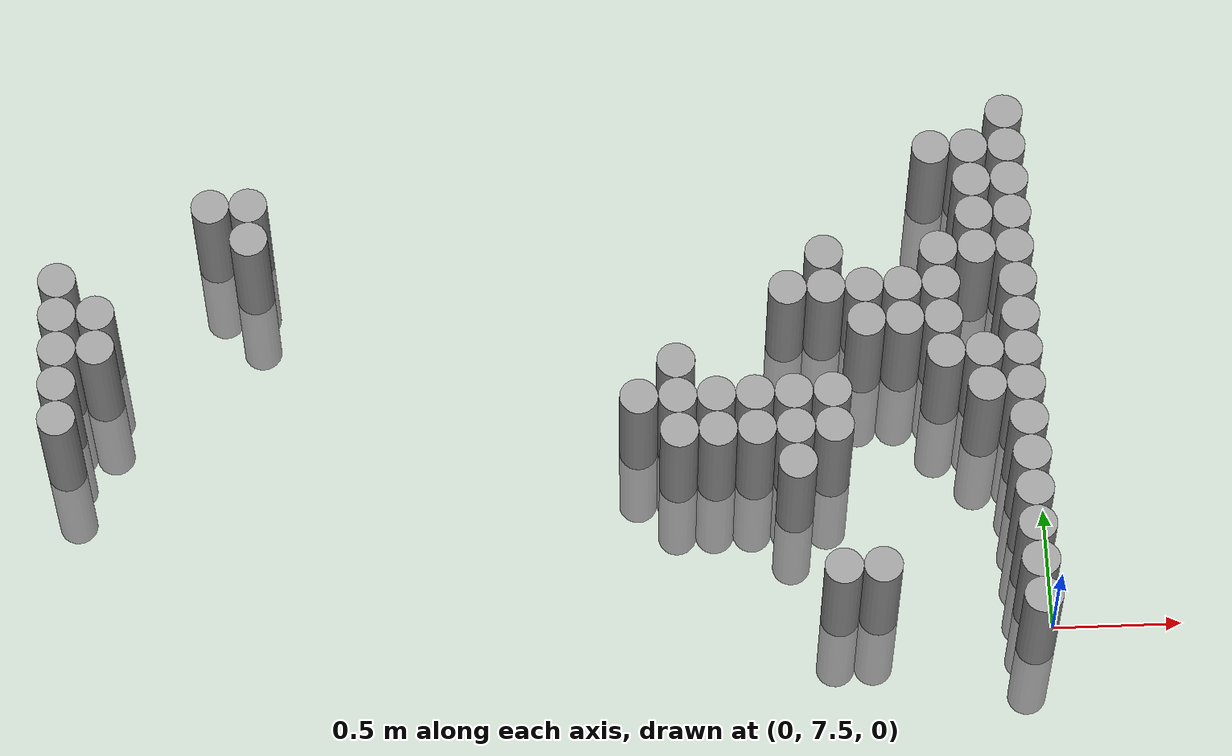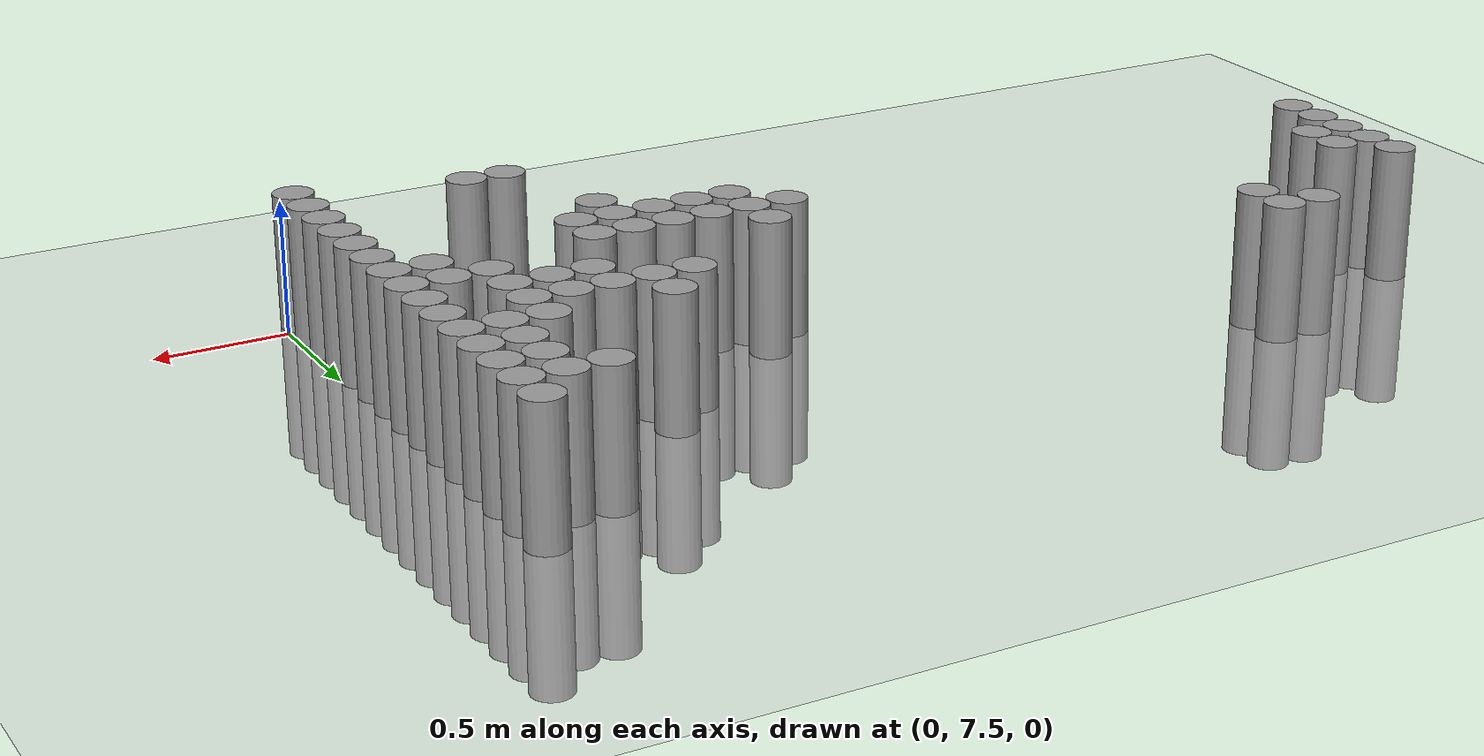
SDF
<sdf version="1.6">
 <world name="default">
  <model name="ground_plane">
   <static>1</static>
   <static>1</static>
   <link name="link">
    <collision name="collision">
     <geometry><plane><normal>0 0 1</normal><size>100 100</size></plane></geometry>
     <surface><friction><ode><mu>100</mu><mu2>50</mu2></ode></friction></surface>
    </collision>
    <visual name="visual">
     <cast_shadows>0</cast_shadows>
     <geometry><plane><normal>0 0 1</normal><size>100 100</size></plane></geometry>
     <material>
      <script><uri>file://media/materials/scripts/gazebo.material</uri><name>Gazebo/Grey</name></script>
     </material>
    </visual>
   </link>
  </model>
  <model name="unit_cylinder_165">
   <static>1</static>
   <pose>-3.825000 8.325000 0.000000 0.000000 0.000000 0.000000</pose>
   <link name="link">
    <inertial>
     <mass>1</mass>
     <inertia><ixx>0.145833</ixx><ixy>0</ixy><ixz>0</ixz><iyy>0.145833</iyy><iyz>0</iyz><izz>0.125</izz></inertia>
    </inertial>
    <collision name="collision">
     <geometry><cylinder><radius>0.075000</radius><length>1</length></cylinder></geometry>
    </collision>
    <visual name="visual">
     <geometry><cylinder><radius>0.075000</radius><length>1</length></cylinder></geometry>
     <material>
      <script><name>Gazebo/Grey</name><uri>file://media/materials/scripts/gazebo.material</uri></script>
     </material>
    </visual>
   </link>
  </model>
  <model name="unit_cylinder_166">
   <static>1</static>
   <pose>-3.825000 8.475000 0.000000 0.000000 0.000000 0.000000</pose>
   <link name="link">
    <inertial>
     <mass>1</mass>
     <inertia><ixx>0.145833</ixx><ixy>0</ixy><ixz>0</ixz><iyy>0.145833</iyy><iyz>0</iyz><izz>0.125</izz></inertia>
    </inertial>
    <collision name="collision">
     <geometry><cylinder><radius>0.075000</radius><length>1</length></cylinder></geometry>
    </collision>
    <visual name="visual">
     <geometry><cylinder><radius>0.075000</radius><length>1</length></cylinder></geometry>
     <material>
      <script><name>Gazebo/Grey</name><uri>file://media/materials/scripts/gazebo.material</uri></script>
     </material>
    </visual>
   </link>
  </model>
  <model name="unit_cylinder_167">
   <static>1</static>
   <pose>-3.825000 8.625000 0.000000 0.000000 0.000000 0.000000</pose>
   <link name="link">
    <inertial>
     <mass>1</mass>
     <inertia><ixx>0.145833</ixx><ixy>0</ixy><ixz>0</ixz><iyy>0.145833</iyy><iyz>0</iyz><izz>0.125</izz></inertia>
    </inertial>
    <collision name="collision">
     <geometry><cylinder><radius>0.075000</radius><length>1</length></cylinder></geometry>
    </collision>
    <visual name="visual">
     <geometry><cylinder><radius>0.075000</radius><length>1</length></cylinder></geometry>
     <material>
      <script><name>Gazebo/Grey</name><uri>file://media/materials/scripts/gazebo.material</uri></script>
     </material>
    </visual>
   </link>
  </model>
  <model name="unit_cylinder_168">
   <static>1</static>
   <pose>-3.825000 8.775000 0.000000 0.000000 0.000000 0.000000</pose>
   <link name="link">
    <inertial>
     <mass>1</mass>
     <inertia><ixx>0.145833</ixx><ixy>0</ixy><ixz>0</ixz><iyy>0.145833</iyy><iyz>0</iyz><izz>0.125</izz></inertia>
    </inertial>
    <collision name="collision">
     <geometry><cylinder><radius>0.075000</radius><length>1</length></cylinder></geometry>
    </collision>
    <visual name="visual">
     <geometry><cylinder><radius>0.075000</radius><length>1</length></cylinder></geometry>
     <material>
      <script><name>Gazebo/Grey</name><uri>file://media/materials/scripts/gazebo.material</uri></script>
     </material>
    </visual>
   </link>
  </model>
  <model name="unit_cylinder_169">
   <static>1</static>
   <pose>-3.825000 8.925000 0.000000 0.000000 0.000000 0.000000</pose>
   <link name="link">
    <inertial>
     <mass>1</mass>
     <inertia><ixx>0.145833</ixx><ixy>0</ixy><ixz>0</ixz><iyy>0.145833</iyy><iyz>0</iyz><izz>0.125</izz></inertia>
    </inertial>
    <collision name="collision">
     <geometry><cylinder><radius>0.075000</radius><length>1</length></cylinder></geometry>
    </collision>
    <visual name="visual">
     <geometry><cylinder><radius>0.075000</radius><length>1</length></cylinder></geometry>
     <material>
      <script><name>Gazebo/Grey</name><uri>file://media/materials/scripts/gazebo.material</uri></script>
     </material>
    </visual>
   </link>
  </model>
  <model name="unit_cylinder_174">
   <static>1</static>
   <pose>-3.675000 8.625000 0.000000 0.000000 0.000000 0.000000</pose>
   <link name="link">
    <inertial>
     <mass>1</mass>
     <inertia><ixx>0.145833</ixx><ixy>0</ixy><ixz>0</ixz><iyy>0.145833</iyy><iyz>0</iyz><izz>0.125</izz></inertia>
    </inertial>
    <collision name="collision">
     <geometry><cylinder><radius>0.075000</radius><length>1</length></cylinder></geometry>
    </collision>
    <visual name="visual">
     <geometry><cylinder><radius>0.075000</radius><length>1</length></cylinder></geometry>
     <material>
      <script><name>Gazebo/Grey</name><uri>file://media/materials/scripts/gazebo.material</uri></script>
     </material>
    </visual>
   </link>
  </model>
  <model name="unit_cylinder_175">
   <static>1</static>
   <pose>-3.675000 8.775000 0.000000 0.000000 0.000000 0.000000</pose>
   <link name="link">
    <inertial>
     <mass>1</mass>
     <inertia><ixx>0.145833</ixx><ixy>0</ixy><ixz>0</ixz><iyy>0.145833</iyy><iyz>0</iyz><izz>0.125</izz></inertia>
    </inertial>
    <collision name="collision">
     <geometry><cylinder><radius>0.075000</radius><length>1</length></cylinder></geometry>
    </collision>
    <visual name="visual">
     <geometry><cylinder><radius>0.075000</radius><length>1</length></cylinder></geometry>
     <material>
      <script><name>Gazebo/Grey</name><uri>file://media/materials/scripts/gazebo.material</uri></script>
     </material>
    </visual>
   </link>
  </model>
  <model name="unit_cylinder_183">
   <static>1</static>
   <pose>-3.225000 9.225000 0.000000 0.000000 0.000000 0.000000</pose>
   <link name="link">
    <inertial>
     <mass>1</mass>
     <inertia><ixx>0.145833</ixx><ixy>0</ixy><ixz>0</ixz><iyy>0.145833</iyy><iyz>0</iyz><izz>0.125</izz></inertia>
    </inertial>
    <collision name="collision">
     <geometry><cylinder><radius>0.075000</radius><length>1</length></cylinder></geometry>
    </collision>
    <visual name="visual">
     <geometry><cylinder><radius>0.075000</radius><length>1</length></cylinder></geometry>
     <material>
      <script><name>Gazebo/Grey</name><uri>file://media/materials/scripts/gazebo.material</uri></script>
     </material>
    </visual>
   </link>
  </model>
  <model name="unit_cylinder_186">
   <static>1</static>
   <pose>-3.075000 9.075000 0.000000 0.000000 0.000000 0.000000</pose>
   <link name="link">
    <inertial>
     <mass>1</mass>
     <inertia><ixx>0.145833</ixx><ixy>0</ixy><ixz>0</ixz><iyy>0.145833</iyy><iyz>0</iyz><izz>0.125</izz></inertia>
    </inertial>
    <collision name="collision">
     <geometry><cylinder><radius>0.075000</radius><length>1</length></cylinder></geometry>
    </collision>
    <visual name="visual">
     <geometry><cylinder><radius>0.075000</radius><length>1</length></cylinder></geometry>
     <material>
      <script><name>Gazebo/Grey</name><uri>file://media/materials/scripts/gazebo.material</uri></script>
     </material>
    </visual>
   </link>
  </model>
  <model name="unit_cylinder_187">
   <static>1</static>
   <pose>-3.075000 9.225000 0.000000 0.000000 0.000000 0.000000</pose>
   <link name="link">
    <inertial>
     <mass>1</mass>
     <inertia><ixx>0.145833</ixx><ixy>0</ixy><ixz>0</ixz><iyy>0.145833</iyy><iyz>0</iyz><izz>0.125</izz></inertia>
    </inertial>
    <collision name="collision">
     <geometry><cylinder><radius>0.075000</radius><length>1</length></cylinder></geometry>
    </collision>
    <visual name="visual">
     <geometry><cylinder><radius>0.075000</radius><length>1</length></cylinder></geometry>
     <material>
      <script><name>Gazebo/Grey</name><uri>file://media/materials/scripts/gazebo.material</uri></script>
     </material>
    </visual>
   </link>
  </model>
  <model name="unit_cylinder_196">
   <static>1</static>
   <pose>-1.575000 8.325000 0.000000 0.000000 0.000000 0.000000</pose>
   <link name="link">
    <inertial>
     <mass>1</mass>
     <inertia><ixx>0.145833</ixx><ixy>0</ixy><ixz>0</ixz><iyy>0.145833</iyy><iyz>0</iyz><izz>0.125</izz></inertia>
    </inertial>
    <collision name="collision">
     <geometry><cylinder><radius>0.075000</radius><length>1</length></cylinder></geometry>
    </collision>
    <visual name="visual">
     <geometry><cylinder><radius>0.075000</radius><length>1</length></cylinder></geometry>
     <material>
      <script><name>Gazebo/Grey</name><uri>file://media/materials/scripts/gazebo.material</uri></script>
     </material>
    </visual>
   </link>
  </model>
  <model name="unit_cylinder_203">
   <static>1</static>
   <pose>-1.425000 8.175000 0.000000 0.000000 0.000000 0.000000</pose>
   <link name="link">
    <inertial>
     <mass>1</mass>
     <inertia><ixx>0.145833</ixx><ixy>0</ixy><ixz>0</ixz><iyy>0.145833</iyy><iyz>0</iyz><izz>0.125</izz></inertia>
    </inertial>
    <collision name="collision">
     <geometry><cylinder><radius>0.075000</radius><length>1</length></cylinder></geometry>
    </collision>
    <visual name="visual">
     <geometry><cylinder><radius>0.075000</radius><length>1</length></cylinder></geometry>
     <material>
      <script><name>Gazebo/Grey</name><uri>file://media/materials/scripts/gazebo.material</uri></script>
     </material>
    </visual>
   </link>
  </model>
  <model name="unit_cylinder_204">
   <static>1</static>
   <pose>-1.425000 8.325000 0.000000 0.000000 0.000000 0.000000</pose>
   <link name="link">
    <inertial>
     <mass>1</mass>
     <inertia><ixx>0.145833</ixx><ixy>0</ixy><ixz>0</ixz><iyy>0.145833</iyy><iyz>0</iyz><izz>0.125</izz></inertia>
    </inertial>
    <collision name="collision">
     <geometry><cylinder><radius>0.075000</radius><length>1</length></cylinder></geometry>
    </collision>
    <visual name="visual">
     <geometry><cylinder><radius>0.075000</radius><length>1</length></cylinder></geometry>
     <material>
      <script><name>Gazebo/Grey</name><uri>file://media/materials/scripts/gazebo.material</uri></script>
     </material>
    </visual>
   </link>
  </model>
  <model name="unit_cylinder_205">
   <static>1</static>
   <pose>-1.425000 8.475000 0.000000 0.000000 0.000000 0.000000</pose>
   <link name="link">
    <inertial>
     <mass>1</mass>
     <inertia><ixx>0.145833</ixx><ixy>0</ixy><ixz>0</ixz><iyy>0.145833</iyy><iyz>0</iyz><izz>0.125</izz></inertia>
    </inertial>
    <collision name="collision">
     <geometry><cylinder><radius>0.075000</radius><length>1</length></cylinder></geometry>
    </collision>
    <visual name="visual">
     <geometry><cylinder><radius>0.075000</radius><length>1</length></cylinder></geometry>
     <material>
      <script><name>Gazebo/Grey</name><uri>file://media/materials/scripts/gazebo.material</uri></script>
     </material>
    </visual>
   </link>
  </model>
  <model name="unit_cylinder_211">
   <static>1</static>
   <pose>-1.275000 8.175000 0.000000 0.000000 0.000000 0.000000</pose>
   <link name="link">
    <inertial>
     <mass>1</mass>
     <inertia><ixx>0.145833</ixx><ixy>0</ixy><ixz>0</ixz><iyy>0.145833</iyy><iyz>0</iyz><izz>0.125</izz></inertia>
    </inertial>
    <collision name="collision">
     <geometry><cylinder><radius>0.075000</radius><length>1</length></cylinder></geometry>
    </collision>
    <visual name="visual">
     <geometry><cylinder><radius>0.075000</radius><length>1</length></cylinder></geometry>
     <material>
      <script><name>Gazebo/Grey</name><uri>file://media/materials/scripts/gazebo.material</uri></script>
     </material>
    </visual>
   </link>
  </model>
  <model name="unit_cylinder_212">
   <static>1</static>
   <pose>-1.275000 8.325000 0.000000 0.000000 0.000000 0.000000</pose>
   <link name="link">
    <inertial>
     <mass>1</mass>
     <inertia><ixx>0.145833</ixx><ixy>0</ixy><ixz>0</ixz><iyy>0.145833</iyy><iyz>0</iyz><izz>0.125</izz></inertia>
    </inertial>
    <collision name="collision">
     <geometry><cylinder><radius>0.075000</radius><length>1</length></cylinder></geometry>
    </collision>
    <visual name="visual">
     <geometry><cylinder><radius>0.075000</radius><length>1</length></cylinder></geometry>
     <material>
      <script><name>Gazebo/Grey</name><uri>file://media/materials/scripts/gazebo.material</uri></script>
     </material>
    </visual>
   </link>
  </model>
  <model name="unit_cylinder_214">
   <static>1</static>
   <pose>-1.125000 8.175000 0.000000 0.000000 0.000000 0.000000</pose>
   <link name="link">
    <inertial>
     <mass>1</mass>
     <inertia><ixx>0.145833</ixx><ixy>0</ixy><ixz>0</ixz><iyy>0.145833</iyy><iyz>0</iyz><izz>0.125</izz></inertia>
    </inertial>
    <collision name="collision">
     <geometry><cylinder><radius>0.075000</radius><length>1</length></cylinder></geometry>
    </collision>
    <visual name="visual">
     <geometry><cylinder><radius>0.075000</radius><length>1</length></cylinder></geometry>
     <material>
      <script><name>Gazebo/Grey</name><uri>file://media/materials/scripts/gazebo.material</uri></script>
     </material>
    </visual>
   </link>
  </model>
  <model name="unit_cylinder_215">
   <static>1</static>
   <pose>-1.125000 8.325000 0.000000 0.000000 0.000000 0.000000</pose>
   <link name="link">
    <inertial>
     <mass>1</mass>
     <inertia><ixx>0.145833</ixx><ixy>0</ixy><ixz>0</ixz><iyy>0.145833</iyy><iyz>0</iyz><izz>0.125</izz></inertia>
    </inertial>
    <collision name="collision">
     <geometry><cylinder><radius>0.075000</radius><length>1</length></cylinder></geometry>
    </collision>
    <visual name="visual">
     <geometry><cylinder><radius>0.075000</radius><length>1</length></cylinder></geometry>
     <material>
      <script><name>Gazebo/Grey</name><uri>file://media/materials/scripts/gazebo.material</uri></script>
     </material>
    </visual>
   </link>
  </model>
  <model name="unit_cylinder_217">
   <static>1</static>
   <pose>-0.975000 8.025000 0.000000 0.000000 0.000000 0.000000</pose>
   <link name="link">
    <inertial>
     <mass>1</mass>
     <inertia><ixx>0.145833</ixx><ixy>0</ixy><ixz>0</ixz><iyy>0.145833</iyy><iyz>0</iyz><izz>0.125</izz></inertia>
    </inertial>
    <collision name="collision">
     <geometry><cylinder><radius>0.075000</radius><length>1</length></cylinder></geometry>
    </collision>
    <visual name="visual">
     <geometry><cylinder><radius>0.075000</radius><length>1</length></cylinder></geometry>
     <material>
      <script><name>Gazebo/Grey</name><uri>file://media/materials/scripts/gazebo.material</uri></script>
     </material>
    </visual>
   </link>
  </model>
  <model name="unit_cylinder_218">
   <static>1</static>
   <pose>-0.975000 8.175000 0.000000 0.000000 0.000000 0.000000</pose>
   <link name="link">
    <inertial>
     <mass>1</mass>
     <inertia><ixx>0.145833</ixx><ixy>0</ixy><ixz>0</ixz><iyy>0.145833</iyy><iyz>0</iyz><izz>0.125</izz></inertia>
    </inertial>
    <collision name="collision">
     <geometry><cylinder><radius>0.075000</radius><length>1</length></cylinder></geometry>
    </collision>
    <visual name="visual">
     <geometry><cylinder><radius>0.075000</radius><length>1</length></cylinder></geometry>
     <material>
      <script><name>Gazebo/Grey</name><uri>file://media/materials/scripts/gazebo.material</uri></script>
     </material>
    </visual>
   </link>
  </model>
  <model name="unit_cylinder_219">
   <static>1</static>
   <pose>-0.975000 8.325000 0.000000 0.000000 0.000000 0.000000</pose>
   <link name="link">
    <inertial>
     <mass>1</mass>
     <inertia><ixx>0.145833</ixx><ixy>0</ixy><ixz>0</ixz><iyy>0.145833</iyy><iyz>0</iyz><izz>0.125</izz></inertia>
    </inertial>
    <collision name="collision">
     <geometry><cylinder><radius>0.075000</radius><length>1</length></cylinder></geometry>
    </collision>
    <visual name="visual">
     <geometry><cylinder><radius>0.075000</radius><length>1</length></cylinder></geometry>
     <material>
      <script><name>Gazebo/Grey</name><uri>file://media/materials/scripts/gazebo.material</uri></script>
     </material>
    </visual>
   </link>
  </model>
  <model name="unit_cylinder_220">
   <static>1</static>
   <pose>-0.975000 8.775000 0.000000 0.000000 0.000000 0.000000</pose>
   <link name="link">
    <inertial>
     <mass>1</mass>
     <inertia><ixx>0.145833</ixx><ixy>0</ixy><ixz>0</ixz><iyy>0.145833</iyy><iyz>0</iyz><izz>0.125</izz></inertia>
    </inertial>
    <collision name="collision">
     <geometry><cylinder><radius>0.075000</radius><length>1</length></cylinder></geometry>
    </collision>
    <visual name="visual">
     <geometry><cylinder><radius>0.075000</radius><length>1</length></cylinder></geometry>
     <material>
      <script><name>Gazebo/Grey</name><uri>file://media/materials/scripts/gazebo.material</uri></script>
     </material>
    </visual>
   </link>
  </model>
  <model name="unit_cylinder_224">
   <static>1</static>
   <pose>-0.825000 7.575000 0.000000 0.000000 0.000000 0.000000</pose>
   <link name="link">
    <inertial>
     <mass>1</mass>
     <inertia><ixx>0.145833</ixx><ixy>0</ixy><ixz>0</ixz><iyy>0.145833</iyy><iyz>0</iyz><izz>0.125</izz></inertia>
    </inertial>
    <collision name="collision">
     <geometry><cylinder><radius>0.075000</radius><length>1</length></cylinder></geometry>
    </collision>
    <visual name="visual">
     <geometry><cylinder><radius>0.075000</radius><length>1</length></cylinder></geometry>
     <material>
      <script><name>Gazebo/Grey</name><uri>file://media/materials/scripts/gazebo.material</uri></script>
     </material>
    </visual>
   </link>
  </model>
  <model name="unit_cylinder_225">
   <static>1</static>
   <pose>-0.825000 8.175000 0.000000 0.000000 0.000000 0.000000</pose>
   <link name="link">
    <inertial>
     <mass>1</mass>
     <inertia><ixx>0.145833</ixx><ixy>0</ixy><ixz>0</ixz><iyy>0.145833</iyy><iyz>0</iyz><izz>0.125</izz></inertia>
    </inertial>
    <collision name="collision">
     <geometry><cylinder><radius>0.075000</radius><length>1</length></cylinder></geometry>
    </collision>
    <visual name="visual">
     <geometry><cylinder><radius>0.075000</radius><length>1</length></cylinder></geometry>
     <material>
      <script><name>Gazebo/Grey</name><uri>file://media/materials/scripts/gazebo.material</uri></script>
     </material>
    </visual>
   </link>
  </model>
  <model name="unit_cylinder_226">
   <static>1</static>
   <pose>-0.825000 8.325000 0.000000 0.000000 0.000000 0.000000</pose>
   <link name="link">
    <inertial>
     <mass>1</mass>
     <inertia><ixx>0.145833</ixx><ixy>0</ixy><ixz>0</ixz><iyy>0.145833</iyy><iyz>0</iyz><izz>0.125</izz></inertia>
    </inertial>
    <collision name="collision">
     <geometry><cylinder><radius>0.075000</radius><length>1</length></cylinder></geometry>
    </collision>
    <visual name="visual">
     <geometry><cylinder><radius>0.075000</radius><length>1</length></cylinder></geometry>
     <material>
      <script><name>Gazebo/Grey</name><uri>file://media/materials/scripts/gazebo.material</uri></script>
     </material>
    </visual>
   </link>
  </model>
  <model name="unit_cylinder_227">
   <static>1</static>
   <pose>-0.825000 8.775000 0.000000 0.000000 0.000000 0.000000</pose>
   <link name="link">
    <inertial>
     <mass>1</mass>
     <inertia><ixx>0.145833</ixx><ixy>0</ixy><ixz>0</ixz><iyy>0.145833</iyy><iyz>0</iyz><izz>0.125</izz></inertia>
    </inertial>
    <collision name="collision">
     <geometry><cylinder><radius>0.075000</radius><length>1</length></cylinder></geometry>
    </collision>
    <visual name="visual">
     <geometry><cylinder><radius>0.075000</radius><length>1</length></cylinder></geometry>
     <material>
      <script><name>Gazebo/Grey</name><uri>file://media/materials/scripts/gazebo.material</uri></script>
     </material>
    </visual>
   </link>
  </model>
  <model name="unit_cylinder_228">
   <static>1</static>
   <pose>-0.825000 8.925000 0.000000 0.000000 0.000000 0.000000</pose>
   <link name="link">
    <inertial>
     <mass>1</mass>
     <inertia><ixx>0.145833</ixx><ixy>0</ixy><ixz>0</ixz><iyy>0.145833</iyy><iyz>0</iyz><izz>0.125</izz></inertia>
    </inertial>
    <collision name="collision">
     <geometry><cylinder><radius>0.075000</radius><length>1</length></cylinder></geometry>
    </collision>
    <visual name="visual">
     <geometry><cylinder><radius>0.075000</radius><length>1</length></cylinder></geometry>
     <material>
      <script><name>Gazebo/Grey</name><uri>file://media/materials/scripts/gazebo.material</uri></script>
     </material>
    </visual>
   </link>
  </model>
  <model name="unit_cylinder_229">
   <static>1</static>
   <pose>-0.675000 7.575000 0.000000 0.000000 0.000000 0.000000</pose>
   <link name="link">
    <inertial>
     <mass>1</mass>
     <inertia><ixx>0.145833</ixx><ixy>0</ixy><ixz>0</ixz><iyy>0.145833</iyy><iyz>0</iyz><izz>0.125</izz></inertia>
    </inertial>
    <collision name="collision">
     <geometry><cylinder><radius>0.075000</radius><length>1</length></cylinder></geometry>
    </collision>
    <visual name="visual">
     <geometry><cylinder><radius>0.075000</radius><length>1</length></cylinder></geometry>
     <material>
      <script><name>Gazebo/Grey</name><uri>file://media/materials/scripts/gazebo.material</uri></script>
     </material>
    </visual>
   </link>
  </model>
  <model name="unit_cylinder_230">
   <static>1</static>
   <pose>-0.675000 8.625000 0.000000 0.000000 0.000000 0.000000</pose>
   <link name="link">
    <inertial>
     <mass>1</mass>
     <inertia><ixx>0.145833</ixx><ixy>0</ixy><ixz>0</ixz><iyy>0.145833</iyy><iyz>0</iyz><izz>0.125</izz></inertia>
    </inertial>
    <collision name="collision">
     <geometry><cylinder><radius>0.075000</radius><length>1</length></cylinder></geometry>
    </collision>
    <visual name="visual">
     <geometry><cylinder><radius>0.075000</radius><length>1</length></cylinder></geometry>
     <material>
      <script><name>Gazebo/Grey</name><uri>file://media/materials/scripts/gazebo.material</uri></script>
     </material>
    </visual>
   </link>
  </model>
  <model name="unit_cylinder_231">
   <static>1</static>
   <pose>-0.675000 8.775000 0.000000 0.000000 0.000000 0.000000</pose>
   <link name="link">
    <inertial>
     <mass>1</mass>
     <inertia><ixx>0.145833</ixx><ixy>0</ixy><ixz>0</ixz><iyy>0.145833</iyy><iyz>0</iyz><izz>0.125</izz></inertia>
    </inertial>
    <collision name="collision">
     <geometry><cylinder><radius>0.075000</radius><length>1</length></cylinder></geometry>
    </collision>
    <visual name="visual">
     <geometry><cylinder><radius>0.075000</radius><length>1</length></cylinder></geometry>
     <material>
      <script><name>Gazebo/Grey</name><uri>file://media/materials/scripts/gazebo.material</uri></script>
     </material>
    </visual>
   </link>
  </model>
  <model name="unit_cylinder_234">
   <static>1</static>
   <pose>-0.525000 8.625000 0.000000 0.000000 0.000000 0.000000</pose>
   <link name="link">
    <inertial>
     <mass>1</mass>
     <inertia><ixx>0.145833</ixx><ixy>0</ixy><ixz>0</ixz><iyy>0.145833</iyy><iyz>0</iyz><izz>0.125</izz></inertia>
    </inertial>
    <collision name="collision">
     <geometry><cylinder><radius>0.075000</radius><length>1</length></cylinder></geometry>
    </collision>
    <visual name="visual">
     <geometry><cylinder><radius>0.075000</radius><length>1</length></cylinder></geometry>
     <material>
      <script><name>Gazebo/Grey</name><uri>file://media/materials/scripts/gazebo.material</uri></script>
     </material>
    </visual>
   </link>
  </model>
  <model name="unit_cylinder_235">
   <static>1</static>
   <pose>-0.525000 8.775000 0.000000 0.000000 0.000000 0.000000</pose>
   <link name="link">
    <inertial>
     <mass>1</mass>
     <inertia><ixx>0.145833</ixx><ixy>0</ixy><ixz>0</ixz><iyy>0.145833</iyy><iyz>0</iyz><izz>0.125</izz></inertia>
    </inertial>
    <collision name="collision">
     <geometry><cylinder><radius>0.075000</radius><length>1</length></cylinder></geometry>
    </collision>
    <visual name="visual">
     <geometry><cylinder><radius>0.075000</radius><length>1</length></cylinder></geometry>
     <material>
      <script><name>Gazebo/Grey</name><uri>file://media/materials/scripts/gazebo.material</uri></script>
     </material>
    </visual>
   </link>
  </model>
  <model name="unit_cylinder_239">
   <static>1</static>
   <pose>-0.375000 8.475000 0.000000 0.000000 0.000000 0.000000</pose>
   <link name="link">
    <inertial>
     <mass>1</mass>
     <inertia><ixx>0.145833</ixx><ixy>0</ixy><ixz>0</ixz><iyy>0.145833</iyy><iyz>0</iyz><izz>0.125</izz></inertia>
    </inertial>
    <collision name="collision">
     <geometry><cylinder><radius>0.075000</radius><length>1</length></cylinder></geometry>
    </collision>
    <visual name="visual">
     <geometry><cylinder><radius>0.075000</radius><length>1</length></cylinder></geometry>
     <material>
      <script><name>Gazebo/Grey</name><uri>file://media/materials/scripts/gazebo.material</uri></script>
     </material>
    </visual>
   </link>
  </model>
  <model name="unit_cylinder_240">
   <static>1</static>
   <pose>-0.375000 8.625000 0.000000 0.000000 0.000000 0.000000</pose>
   <link name="link">
    <inertial>
     <mass>1</mass>
     <inertia><ixx>0.145833</ixx><ixy>0</ixy><ixz>0</ixz><iyy>0.145833</iyy><iyz>0</iyz><izz>0.125</izz></inertia>
    </inertial>
    <collision name="collision">
     <geometry><cylinder><radius>0.075000</radius><length>1</length></cylinder></geometry>
    </collision>
    <visual name="visual">
     <geometry><cylinder><radius>0.075000</radius><length>1</length></cylinder></geometry>
     <material>
      <script><name>Gazebo/Grey</name><uri>file://media/materials/scripts/gazebo.material</uri></script>
     </material>
    </visual>
   </link>
  </model>
  <model name="unit_cylinder_241">
   <static>1</static>
   <pose>-0.375000 8.775000 0.000000 0.000000 0.000000 0.000000</pose>
   <link name="link">
    <inertial>
     <mass>1</mass>
     <inertia><ixx>0.145833</ixx><ixy>0</ixy><ixz>0</ixz><iyy>0.145833</iyy><iyz>0</iyz><izz>0.125</izz></inertia>
    </inertial>
    <collision name="collision">
     <geometry><cylinder><radius>0.075000</radius><length>1</length></cylinder></geometry>
    </collision>
    <visual name="visual">
     <geometry><cylinder><radius>0.075000</radius><length>1</length></cylinder></geometry>
     <material>
      <script><name>Gazebo/Grey</name><uri>file://media/materials/scripts/gazebo.material</uri></script>
     </material>
    </visual>
   </link>
  </model>
  <model name="unit_cylinder_242">
   <static>1</static>
   <pose>-0.375000 8.925000 0.000000 0.000000 0.000000 0.000000</pose>
   <link name="link">
    <inertial>
     <mass>1</mass>
     <inertia><ixx>0.145833</ixx><ixy>0</ixy><ixz>0</ixz><iyy>0.145833</iyy><iyz>0</iyz><izz>0.125</izz></inertia>
    </inertial>
    <collision name="collision">
     <geometry><cylinder><radius>0.075000</radius><length>1</length></cylinder></geometry>
    </collision>
    <visual name="visual">
     <geometry><cylinder><radius>0.075000</radius><length>1</length></cylinder></geometry>
     <material>
      <script><name>Gazebo/Grey</name><uri>file://media/materials/scripts/gazebo.material</uri></script>
     </material>
    </visual>
   </link>
  </model>
  <model name="unit_cylinder_243">
   <static>1</static>
   <pose>-0.375000 9.375000 0.000000 0.000000 0.000000 0.000000</pose>
   <link name="link">
    <inertial>
     <mass>1</mass>
     <inertia><ixx>0.145833</ixx><ixy>0</ixy><ixz>0</ixz><iyy>0.145833</iyy><iyz>0</iyz><izz>0.125</izz></inertia>
    </inertial>
    <collision name="collision">
     <geometry><cylinder><radius>0.075000</radius><length>1</length></cylinder></geometry>
    </collision>
    <visual name="visual">
     <geometry><cylinder><radius>0.075000</radius><length>1</length></cylinder></geometry>
     <material>
      <script><name>Gazebo/Grey</name><uri>file://media/materials/scripts/gazebo.material</uri></script>
     </material>
    </visual>
   </link>
  </model>
  <model name="unit_cylinder_253">
   <static>1</static>
   <pose>-0.225000 8.325000 0.000000 0.000000 0.000000 0.000000</pose>
   <link name="link">
    <inertial>
     <mass>1</mass>
     <inertia><ixx>0.145833</ixx><ixy>0</ixy><ixz>0</ixz><iyy>0.145833</iyy><iyz>0</iyz><izz>0.125</izz></inertia>
    </inertial>
    <collision name="collision">
     <geometry><cylinder><radius>0.075000</radius><length>1</length></cylinder></geometry>
    </collision>
    <visual name="visual">
     <geometry><cylinder><radius>0.075000</radius><length>1</length></cylinder></geometry>
     <material>
      <script><name>Gazebo/Grey</name><uri>file://media/materials/scripts/gazebo.material</uri></script>
     </material>
    </visual>
   </link>
  </model>
  <model name="unit_cylinder_254">
   <static>1</static>
   <pose>-0.225000 8.475000 0.000000 0.000000 0.000000 0.000000</pose>
   <link name="link">
    <inertial>
     <mass>1</mass>
     <inertia><ixx>0.145833</ixx><ixy>0</ixy><ixz>0</ixz><iyy>0.145833</iyy><iyz>0</iyz><izz>0.125</izz></inertia>
    </inertial>
    <collision name="collision">
     <geometry><cylinder><radius>0.075000</radius><length>1</length></cylinder></geometry>
    </collision>
    <visual name="visual">
     <geometry><cylinder><radius>0.075000</radius><length>1</length></cylinder></geometry>
     <material>
      <script><name>Gazebo/Grey</name><uri>file://media/materials/scripts/gazebo.material</uri></script>
     </material>
    </visual>
   </link>
  </model>
  <model name="unit_cylinder_255">
   <static>1</static>
   <pose>-0.225000 8.925000 0.000000 0.000000 0.000000 0.000000</pose>
   <link name="link">
    <inertial>
     <mass>1</mass>
     <inertia><ixx>0.145833</ixx><ixy>0</ixy><ixz>0</ixz><iyy>0.145833</iyy><iyz>0</iyz><izz>0.125</izz></inertia>
    </inertial>
    <collision name="collision">
     <geometry><cylinder><radius>0.075000</radius><length>1</length></cylinder></geometry>
    </collision>
    <visual name="visual">
     <geometry><cylinder><radius>0.075000</radius><length>1</length></cylinder></geometry>
     <material>
      <script><name>Gazebo/Grey</name><uri>file://media/materials/scripts/gazebo.material</uri></script>
     </material>
    </visual>
   </link>
  </model>
  <model name="unit_cylinder_256">
   <static>1</static>
   <pose>-0.225000 9.075000 0.000000 0.000000 0.000000 0.000000</pose>
   <link name="link">
    <inertial>
     <mass>1</mass>
     <inertia><ixx>0.145833</ixx><ixy>0</ixy><ixz>0</ixz><iyy>0.145833</iyy><iyz>0</iyz><izz>0.125</izz></inertia>
    </inertial>
    <collision name="collision">
     <geometry><cylinder><radius>0.075000</radius><length>1</length></cylinder></geometry>
    </collision>
    <visual name="visual">
     <geometry><cylinder><radius>0.075000</radius><length>1</length></cylinder></geometry>
     <material>
      <script><name>Gazebo/Grey</name><uri>file://media/materials/scripts/gazebo.material</uri></script>
     </material>
    </visual>
   </link>
  </model>
  <model name="unit_cylinder_257">
   <static>1</static>
   <pose>-0.225000 9.225000 0.000000 0.000000 0.000000 0.000000</pose>
   <link name="link">
    <inertial>
     <mass>1</mass>
     <inertia><ixx>0.145833</ixx><ixy>0</ixy><ixz>0</ixz><iyy>0.145833</iyy><iyz>0</iyz><izz>0.125</izz></inertia>
    </inertial>
    <collision name="collision">
     <geometry><cylinder><radius>0.075000</radius><length>1</length></cylinder></geometry>
    </collision>
    <visual name="visual">
     <geometry><cylinder><radius>0.075000</radius><length>1</length></cylinder></geometry>
     <material>
      <script><name>Gazebo/Grey</name><uri>file://media/materials/scripts/gazebo.material</uri></script>
     </material>
    </visual>
   </link>
  </model>
  <model name="unit_cylinder_258">
   <static>1</static>
   <pose>-0.225000 9.375000 0.000000 0.000000 0.000000 0.000000</pose>
   <link name="link">
    <inertial>
     <mass>1</mass>
     <inertia><ixx>0.145833</ixx><ixy>0</ixy><ixz>0</ixz><iyy>0.145833</iyy><iyz>0</iyz><izz>0.125</izz></inertia>
    </inertial>
    <collision name="collision">
     <geometry><cylinder><radius>0.075000</radius><length>1</length></cylinder></geometry>
    </collision>
    <visual name="visual">
     <geometry><cylinder><radius>0.075000</radius><length>1</length></cylinder></geometry>
     <material>
      <script><name>Gazebo/Grey</name><uri>file://media/materials/scripts/gazebo.material</uri></script>
     </material>
    </visual>
   </link>
  </model>
  <model name="unit_cylinder_274">
   <static>1</static>
   <pose>-0.075000 7.425000 0.000000 0.000000 0.000000 0.000000</pose>
   <link name="link">
    <inertial>
     <mass>1</mass>
     <inertia><ixx>0.145833</ixx><ixy>0</ixy><ixz>0</ixz><iyy>0.145833</iyy><iyz>0</iyz><izz>0.125</izz></inertia>
    </inertial>
    <collision name="collision">
     <geometry><cylinder><radius>0.075000</radius><length>1</length></cylinder></geometry>
    </collision>
    <visual name="visual">
     <geometry><cylinder><radius>0.075000</radius><length>1</length></cylinder></geometry>
     <material>
      <script><name>Gazebo/Grey</name><uri>file://media/materials/scripts/gazebo.material</uri></script>
     </material>
    </visual>
   </link>
  </model>
  <model name="unit_cylinder_275">
   <static>1</static>
   <pose>-0.075000 7.575000 0.000000 0.000000 0.000000 0.000000</pose>
   <link name="link">
    <inertial>
     <mass>1</mass>
     <inertia><ixx>0.145833</ixx><ixy>0</ixy><ixz>0</ixz><iyy>0.145833</iyy><iyz>0</iyz><izz>0.125</izz></inertia>
    </inertial>
    <collision name="collision">
     <geometry><cylinder><radius>0.075000</radius><length>1</length></cylinder></geometry>
    </collision>
    <visual name="visual">
     <geometry><cylinder><radius>0.075000</radius><length>1</length></cylinder></geometry>
     <material>
      <script><name>Gazebo/Grey</name><uri>file://media/materials/scripts/gazebo.material</uri></script>
     </material>
    </visual>
   </link>
  </model>
  <model name="unit_cylinder_276">
   <static>1</static>
   <pose>-0.075000 7.725000 0.000000 0.000000 0.000000 0.000000</pose>
   <link name="link">
    <inertial>
     <mass>1</mass>
     <inertia><ixx>0.145833</ixx><ixy>0</ixy><ixz>0</ixz><iyy>0.145833</iyy><iyz>0</iyz><izz>0.125</izz></inertia>
    </inertial>
    <collision name="collision">
     <geometry><cylinder><radius>0.075000</radius><length>1</length></cylinder></geometry>
    </collision>
    <visual name="visual">
     <geometry><cylinder><radius>0.075000</radius><length>1</length></cylinder></geometry>
     <material>
      <script><name>Gazebo/Grey</name><uri>file://media/materials/scripts/gazebo.material</uri></script>
     </material>
    </visual>
   </link>
  </model>
  <model name="unit_cylinder_277">
   <static>1</static>
   <pose>-0.075000 7.875000 0.000000 0.000000 0.000000 0.000000</pose>
   <link name="link">
    <inertial>
     <mass>1</mass>
     <inertia><ixx>0.145833</ixx><ixy>0</ixy><ixz>0</ixz><iyy>0.145833</iyy><iyz>0</iyz><izz>0.125</izz></inertia>
    </inertial>
    <collision name="collision">
     <geometry><cylinder><radius>0.075000</radius><length>1</length></cylinder></geometry>
    </collision>
    <visual name="visual">
     <geometry><cylinder><radius>0.075000</radius><length>1</length></cylinder></geometry>
     <material>
      <script><name>Gazebo/Grey</name><uri>file://media/materials/scripts/gazebo.material</uri></script>
     </material>
    </visual>
   </link>
  </model>
  <model name="unit_cylinder_278">
   <static>1</static>
   <pose>-0.075000 8.025000 0.000000 0.000000 0.000000 0.000000</pose>
   <link name="link">
    <inertial>
     <mass>1</mass>
     <inertia><ixx>0.145833</ixx><ixy>0</ixy><ixz>0</ixz><iyy>0.145833</iyy><iyz>0</iyz><izz>0.125</izz></inertia>
    </inertial>
    <collision name="collision">
     <geometry><cylinder><radius>0.075000</radius><length>1</length></cylinder></geometry>
    </collision>
    <visual name="visual">
     <geometry><cylinder><radius>0.075000</radius><length>1</length></cylinder></geometry>
     <material>
      <script><name>Gazebo/Grey</name><uri>file://media/materials/scripts/gazebo.material</uri></script>
     </material>
    </visual>
   </link>
  </model>
  <model name="unit_cylinder_279">
   <static>1</static>
   <pose>-0.075000 8.175000 0.000000 0.000000 0.000000 0.000000</pose>
   <link name="link">
    <inertial>
     <mass>1</mass>
     <inertia><ixx>0.145833</ixx><ixy>0</ixy><ixz>0</ixz><iyy>0.145833</iyy><iyz>0</iyz><izz>0.125</izz></inertia>
    </inertial>
    <collision name="collision">
     <geometry><cylinder><radius>0.075000</radius><length>1</length></cylinder></geometry>
    </collision>
    <visual name="visual">
     <geometry><cylinder><radius>0.075000</radius><length>1</length></cylinder></geometry>
     <material>
      <script><name>Gazebo/Grey</name><uri>file://media/materials/scripts/gazebo.material</uri></script>
     </material>
    </visual>
   </link>
  </model>
  <model name="unit_cylinder_280">
   <static>1</static>
   <pose>-0.075000 8.325000 0.000000 0.000000 0.000000 0.000000</pose>
   <link name="link">
    <inertial>
     <mass>1</mass>
     <inertia><ixx>0.145833</ixx><ixy>0</ixy><ixz>0</ixz><iyy>0.145833</iyy><iyz>0</iyz><izz>0.125</izz></inertia>
    </inertial>
    <collision name="collision">
     <geometry><cylinder><radius>0.075000</radius><length>1</length></cylinder></geometry>
    </collision>
    <visual name="visual">
     <geometry><cylinder><radius>0.075000</radius><length>1</length></cylinder></geometry>
     <material>
      <script><name>Gazebo/Grey</name><uri>file://media/materials/scripts/gazebo.material</uri></script>
     </material>
    </visual>
   </link>
  </model>
  <model name="unit_cylinder_281">
   <static>1</static>
   <pose>-0.075000 8.475000 0.000000 0.000000 0.000000 0.000000</pose>
   <link name="link">
    <inertial>
     <mass>1</mass>
     <inertia><ixx>0.145833</ixx><ixy>0</ixy><ixz>0</ixz><iyy>0.145833</iyy><iyz>0</iyz><izz>0.125</izz></inertia>
    </inertial>
    <collision name="collision">
     <geometry><cylinder><radius>0.075000</radius><length>1</length></cylinder></geometry>
    </collision>
    <visual name="visual">
     <geometry><cylinder><radius>0.075000</radius><length>1</length></cylinder></geometry>
     <material>
      <script><name>Gazebo/Grey</name><uri>file://media/materials/scripts/gazebo.material</uri></script>
     </material>
    </visual>
   </link>
  </model>
  <model name="unit_cylinder_282">
   <static>1</static>
   <pose>-0.075000 8.625000 0.000000 0.000000 0.000000 0.000000</pose>
   <link name="link">
    <inertial>
     <mass>1</mass>
     <inertia><ixx>0.145833</ixx><ixy>0</ixy><ixz>0</ixz><iyy>0.145833</iyy><iyz>0</iyz><izz>0.125</izz></inertia>
    </inertial>
    <collision name="collision">
     <geometry><cylinder><radius>0.075000</radius><length>1</length></cylinder></geometry>
    </collision>
    <visual name="visual">
     <geometry><cylinder><radius>0.075000</radius><length>1</length></cylinder></geometry>
     <material>
      <script><name>Gazebo/Grey</name><uri>file://media/materials/scripts/gazebo.material</uri></script>
     </material>
    </visual>
   </link>
  </model>
  <model name="unit_cylinder_283">
   <static>1</static>
   <pose>-0.075000 8.775000 0.000000 0.000000 0.000000 0.000000</pose>
   <link name="link">
    <inertial>
     <mass>1</mass>
     <inertia><ixx>0.145833</ixx><ixy>0</ixy><ixz>0</ixz><iyy>0.145833</iyy><iyz>0</iyz><izz>0.125</izz></inertia>
    </inertial>
    <collision name="collision">
     <geometry><cylinder><radius>0.075000</radius><length>1</length></cylinder></geometry>
    </collision>
    <visual name="visual">
     <geometry><cylinder><radius>0.075000</radius><length>1</length></cylinder></geometry>
     <material>
      <script><name>Gazebo/Grey</name><uri>file://media/materials/scripts/gazebo.material</uri></script>
     </material>
    </visual>
   </link>
  </model>
  <model name="unit_cylinder_284">
   <static>1</static>
   <pose>-0.075000 8.925000 0.000000 0.000000 0.000000 0.000000</pose>
   <link name="link">
    <inertial>
     <mass>1</mass>
     <inertia><ixx>0.145833</ixx><ixy>0</ixy><ixz>0</ixz><iyy>0.145833</iyy><iyz>0</iyz><izz>0.125</izz></inertia>
    </inertial>
    <collision name="collision">
     <geometry><cylinder><radius>0.075000</radius><length>1</length></cylinder></geometry>
    </collision>
    <visual name="visual">
     <geometry><cylinder><radius>0.075000</radius><length>1</length></cylinder></geometry>
     <material>
      <script><name>Gazebo/Grey</name><uri>file://media/materials/scripts/gazebo.material</uri></script>
     </material>
    </visual>
   </link>
  </model>
  <model name="unit_cylinder_285">
   <static>1</static>
   <pose>-0.075000 9.075000 0.000000 0.000000 0.000000 0.000000</pose>
   <link name="link">
    <inertial>
     <mass>1</mass>
     <inertia><ixx>0.145833</ixx><ixy>0</ixy><ixz>0</ixz><iyy>0.145833</iyy><iyz>0</iyz><izz>0.125</izz></inertia>
    </inertial>
    <collision name="collision">
     <geometry><cylinder><radius>0.075000</radius><length>1</length></cylinder></geometry>
    </collision>
    <visual name="visual">
     <geometry><cylinder><radius>0.075000</radius><length>1</length></cylinder></geometry>
     <material>
      <script><name>Gazebo/Grey</name><uri>file://media/materials/scripts/gazebo.material</uri></script>
     </material>
    </visual>
   </link>
  </model>
  <model name="unit_cylinder_286">
   <static>1</static>
   <pose>-0.075000 9.225000 0.000000 0.000000 0.000000 0.000000</pose>
   <link name="link">
    <inertial>
     <mass>1</mass>
     <inertia><ixx>0.145833</ixx><ixy>0</ixy><ixz>0</ixz><iyy>0.145833</iyy><iyz>0</iyz><izz>0.125</izz></inertia>
    </inertial>
    <collision name="collision">
     <geometry><cylinder><radius>0.075000</radius><length>1</length></cylinder></geometry>
    </collision>
    <visual name="visual">
     <geometry><cylinder><radius>0.075000</radius><length>1</length></cylinder></geometry>
     <material>
      <script><name>Gazebo/Grey</name><uri>file://media/materials/scripts/gazebo.material</uri></script>
     </material>
    </visual>
   </link>
  </model>
  <model name="unit_cylinder_287">
   <static>1</static>
   <pose>-0.075000 9.375000 0.000000 0.000000 0.000000 0.000000</pose>
   <link name="link">
    <inertial>
     <mass>1</mass>
     <inertia><ixx>0.145833</ixx><ixy>0</ixy><ixz>0</ixz><iyy>0.145833</iyy><iyz>0</iyz><izz>0.125</izz></inertia>
    </inertial>
    <collision name="collision">
     <geometry><cylinder><radius>0.075000</radius><length>1</length></cylinder></geometry>
    </collision>
    <visual name="visual">
     <geometry><cylinder><radius>0.075000</radius><length>1</length></cylinder></geometry>
     <material>
      <script><name>Gazebo/Grey</name><uri>file://media/materials/scripts/gazebo.material</uri></script>
     </material>
    </visual>
   </link>
  </model>
  <model name="unit_cylinder_288">
   <static>1</static>
   <pose>-0.075000 9.525000 0.000000 0.000000 0.000000 0.000000</pose>
   <link name="link">
    <inertial>
     <mass>1</mass>
     <inertia><ixx>0.145833</ixx><ixy>0</ixy><ixz>0</ixz><iyy>0.145833</iyy><iyz>0</iyz><izz>0.125</izz></inertia>
    </inertial>
    <collision name="collision">
     <geometry><cylinder><radius>0.075000</radius><length>1</length></cylinder></geometry>
    </collision>
    <visual name="visual">
     <geometry><cylinder><radius>0.075000</radius><length>1</length></cylinder></geometry>
     <material>
      <script><name>Gazebo/Grey</name><uri>file://media/materials/scripts/gazebo.material</uri></script>
     </material>
    </visual>
   </link>
  </model>
 </world>
</sdf>
